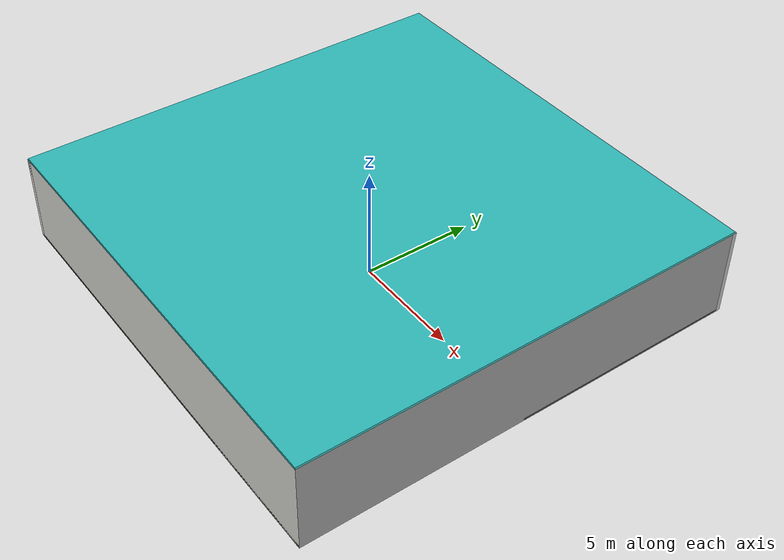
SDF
<sdf version="1.4">
 <world name="default">
  <physics type="ode">
   <max_step_size>0.001</max_step_size>
   <real_time_factor>1</real_time_factor>
   <real_time_update_rate>1000</real_time_update_rate>
   <gravity>0 0 -9.8</gravity>
  </physics>
  <scene><ambient>0.4 0.4 0.4 1</ambient><background>0.7 0.7 0.7 1</background><shadows>1</shadows></scene>
  <model name="Surrounding">
   <static>1</static>
   <link name="Ceiling">
    <collision name="Ceiling_Collision"><geometry><box><size>20 20 0.1</size></box></geometry></collision>
    <visual name="Ceiling_Visual">
     <geometry><box><size>20 20 0.1</size></box></geometry>
     <material>
      <script>
       <uri>file://media/materials/scripts/gazebo.material</uri>
       <name>Gazebo/TurquoiseGlowOutline</name>
      </script>
     </material>
    </visual>
    <pose>0 0 4.05 0 0 0</pose>
   </link>
   <link name="Wall_South">
    <collision name="Wall_South_Collision">
     <geometry><box><size>20 0 4</size></box></geometry>
     <pose>0 0 2 0 -0 0</pose>
    </collision>
    <visual name="Wall_South_Visual">
     <pose>0 0 2 0 -0 0</pose>
     <geometry><box><size>20 0 4</size></box></geometry>
     <material>
      <script><uri>file://media/materials/scripts/gazebo.material</uri><name>Gazebo/CeilingTiled</name></script>
     </material>
    </visual>
    <velocity_decay><linear>0</linear><angular>0</angular></velocity_decay>
    <pose>0 -10 0 0 -0 0</pose>
   </link>
   <link name="Wall_East">
    <collision name="Wall_21_Collision">
     <geometry><box><size>20 0 4</size></box></geometry>
     <pose>0 0 2 0 -0 0</pose>
    </collision>
    <visual name="Wall_21_Visual">
     <pose>0 0 2 0 -0 0</pose>
     <geometry><box><size>20 0 4</size></box></geometry>
     <material>
      <script><uri>file://media/materials/scripts/gazebo.material</uri><name>Gazebo/Grey</name></script>
     </material>
    </visual>
    <velocity_decay><linear>0</linear><angular>0</angular></velocity_decay>
    <pose>10 0 0 0 -0 1.5708</pose>
   </link>
   <link name="Wall_North">
    <collision name="Wall_22_Collision">
     <geometry><box><size>20 0.2 4</size></box></geometry>
     <pose>0 0 2 0 -0 0</pose>
    </collision>
    <visual name="Wall_22_Visual">
     <pose>0 0 2 0 -0 0</pose>
     <geometry><box><size>20 0.2 4</size></box></geometry>
     <material>
      <script><uri>file://media/materials/scripts/gazebo.material</uri><name>Gazebo/LightOff</name></script>
     </material>
    </visual>
    <velocity_decay><linear>0</linear><angular>0</angular></velocity_decay>
    <pose>0 10 0 0 -0 0</pose>
   </link>
   <link name="Wall_West">
    <collision name="Wall_23_Collision">
     <geometry><box><size>20 0.2 4</size></box></geometry>
     <pose>0 0 2 0 -0 0</pose>
    </collision>
    <visual name="Wall_23_Visual">
     <pose>0 0 2 0 -0 0</pose>
     <geometry><box><size>20 0.2 4</size></box></geometry>
     <material>
      <script><uri>file://media/materials/scripts/gazebo.material</uri><name>Gazebo/White</name></script>
     </material>
    </visual>
    <velocity_decay><linear>0</linear><angular>0</angular></velocity_decay>
    <pose>-10 0 0 0 0 -1.5708</pose>
   </link>
   <link name="Ground_link">
    <collision name="collision">
     <pose>0 0 .05 0 -0 0</pose>
     <geometry><box><size>20 20 0.1</size></box></geometry>
    </collision>
    <visual name="visual">
     <pose>0 0 .05 0 -0 0</pose>
     <geometry><box><size>20 20 0.1</size></box></geometry>
     <material>
      <script><uri>file://media/materials/scripts/gazebo.material</uri><name>Gazebo/DarkGrey</name></script>
     </material>
    </visual>
   </link>
   <static>1</static>
  </model>
  <spherical_coordinates>
   <surface_model>EARTH_WGS84</surface_model>
   <latitude_deg>0</latitude_deg>
   <longitude_deg>0</longitude_deg>
   <elevation>0</elevation>
   <heading_deg>0</heading_deg>
  </spherical_coordinates>
  <light name="lightball_0" type="diffuse">
   <diffuse>0.8 0.8 0.8 1</diffuse>
   <specular>0.2 0.2 0.2 1</specular>
   <attenuation>
    <range>100</range>
    <constant>0.7</constant>
    <linear>0.01</linear>
    <quadratic>0.001</quadratic>
   </attenuation>
   <direction>-0.5 0.1 -0.9</direction>
   <pose>-5.05170767382 -1.25612568816 1.49513237352 0 0 0</pose>
  </light>
  <light name="lightball_1" type="diffuse">
   <diffuse>0.8 0.8 0.8 1</diffuse>
   <specular>0.2 0.2 0.2 1</specular>
   <attenuation>
    <range>100</range>
    <constant>0.7</constant>
    <linear>0.01</linear>
    <quadratic>0.001</quadratic>
   </attenuation>
   <direction>-0.5 0.1 -0.9</direction>
   <pose>-6.86843728188 9.54776348351 2.28172548824 0 0 0</pose>
  </light>
  <light name="lightball_2" type="diffuse">
   <diffuse>0.8 0.8 0.8 1</diffuse>
   <specular>0.2 0.2 0.2 1</specular>
   <attenuation>
    <range>100</range>
    <constant>0.7</constant>
    <linear>0.01</linear>
    <quadratic>0.001</quadratic>
   </attenuation>
   <direction>-0.5 0.1 -0.9</direction>
   <pose>4.09568958377 0.0711213341291 1.10370470465 0 0 0</pose>
  </light>
  <light name="lightball_3" type="diffuse">
   <diffuse>0.8 0.8 0.8 1</diffuse>
   <specular>0.2 0.2 0.2 1</specular>
   <attenuation>
    <range>100</range>
    <constant>0.7</constant>
    <linear>0.01</linear>
    <quadratic>0.001</quadratic>
   </attenuation>
   <direction>-0.5 0.1 -0.9</direction>
   <pose>-5.44741130745 -8.49239274371 0.989583747691 0 0 0</pose>
  </light>
  <light name="lightball_4" type="diffuse">
   <diffuse>0.8 0.8 0.8 1</diffuse>
   <specular>0.2 0.2 0.2 1</specular>
   <attenuation>
    <range>100</range>
    <constant>0.7</constant>
    <linear>0.01</linear>
    <quadratic>0.001</quadratic>
   </attenuation>
   <direction>-0.5 0.1 -0.9</direction>
   <pose>9.28366491141 -0.056870216819 1.5888286042 0 0 0</pose>
  </light>
  <light name="lightball_5" type="diffuse">
   <diffuse>0.8 0.8 0.8 1</diffuse>
   <specular>0.2 0.2 0.2 1</specular>
   <attenuation>
    <range>100</range>
    <constant>0.7</constant>
    <linear>0.01</linear>
    <quadratic>0.001</quadratic>
   </attenuation>
   <direction>-0.5 0.1 -0.9</direction>
   <pose>6.88740071274 9.55698631854 3.29611786993 0 0 0</pose>
  </light>
  <include>
   <uri>model://construction_cone</uri>
   <pose>-7.80527147995 3.70956616073 0 0 0 2.94505392396</pose>
  </include>
  <include><uri>model://cabinet</uri><pose>-4.4096823784 -0.838300700702 0 0 0 0.136534530254</pose></include>
  <include>
   <uri>model://construction_cone</uri>
   <pose>-1.2876855054 3.91093792146 0 0 0 2.76165717871</pose>
  </include>
  <include>
   <uri>model://textured_shapes</uri>
   <pose>2.09599270145 -7.28727202011 0 0 0 1.78125670991</pose>
  </include>
  <include>
   <uri>model://robocup_3Dsim_goal</uri>
   <pose>0.814898314544 -1.90071635896 0 0 0 0.998051851293</pose>
  </include>
  <include><uri>model://cabinet</uri><pose>4.0618603001 4.30493088804 0 0 0 1.31334424845</pose></include>
  <include><uri>model://cabinet</uri><pose>8.10417391364 5.2541205883 0 0 0 0.347096717534</pose></include>
 </world>
</sdf>

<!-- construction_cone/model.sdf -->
<sdf version="1.5">
  <model name="Construction Cone">
    <link name="link">
      <collision name="collision">
        <geometry>
          <mesh>
            <scale>10 10 10</scale>
            <uri>file://isr-testbed/construction_cone/meshes/construction_cone.dae</uri>
          </mesh>
        </geometry>
      </collision>
      <visual name="visual">
        <geometry>
          <mesh>
            <scale>10 10 10</scale>
            <uri>file://isr-testbed/construction_cone/meshes/construction_cone.dae</uri>
          </mesh>
        </geometry>
      </visual>
    </link>
  </model>
</sdf>

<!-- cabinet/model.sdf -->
<sdf version="1.5">
  <model name="cabinet">
    <static>true</static>
    <link name="cabinet_bottom_plate">
      <inertial>
        <pose>0 0 -1 0 0 0</pose>
        <inertia>
          <ixx>2.050000</ixx>
          <ixy>0</ixy>
          <ixz>0</ixz>
          <iyy>2.050000</iyy>
          <iyz>0</iyz>
          <izz>2.050000</izz>
        </inertia>
        <mass>25.000000</mass>
      </inertial>
      <collision name="cabinet_bottom_plate_geom">
        <pose>0 0 0.010000 0 0 0</pose>
        <geometry>
          <box>
            <size>0.450000 0.450000 0.020000</size>
          </box>
        </geometry>
      </collision>
      <visual name="cabinet_bottom_plate_geom_visual">
        <pose>0 0 0.010000 0 0 0</pose>
        <geometry>
          <box>
            <size>0.450000 0.450000 0.020000</size>
          </box>
        </geometry>
        <material>
          <script>
            <uri>model://media/materials/scripts/gazebo.material</uri>
            <name>Gazebo/Wood</name>
          </script>
        </material>
      </visual>
      <collision name="cabinet_bottom_plate_geom_cabinet_back_plate">
        <pose>0.235000 0 0.510000 0 0 0</pose>
        <geometry>
          <box>
            <size>0.020000 0.450000 1.020000</size>
          </box>
        </geometry>
      </collision>
      <visual name="cabinet_bottom_plate_geom_cabinet_back_plate_visual">
        <pose>0.235000 0 0.510000 0 0 0</pose>
        <geometry>
          <box>
            <size>0.020000 0.450000 1.020000</size>
          </box>
        </geometry>
        <material>
          <script>
            <uri>model://media/materials/scripts/gazebo.material</uri>
            <name>Gazebo/Wood</name>
          </script>
        </material>
      </visual>
      <collision name="cabinet_bottom_plate_geom_cabinet_left_plate">
        <pose>0 0.235000 0.510000 0 0 0</pose>
        <geometry>
          <box>
            <size>0.450000 0.020000 1.020000</size>
          </box>
        </geometry>
      </collision>
      <visual name="cabinet_bottom_plate_geom_cabinet_left_plate_visual">
        <pose>0 0.235000 0.510000 0 0 0</pose>
        <geometry>
          <box>
            <size>0.450000 0.020000 1.020000</size>
          </box>
        </geometry>
        <material>
          <script>
            <uri>model://media/materials/scripts/gazebo.material</uri>
            <name>Gazebo/Wood</name>
          </script>
        </material>
      </visual>
      <collision name="cabinet_bottom_plate_geom_cabinet_middle_plate">
        <pose>0 0 0.510000 0 0 0</pose>
        <geometry>
          <box>
            <size>0.450000 0.450000 0.020000</size>
          </box>
        </geometry>
      </collision>
      <visual name="cabinet_bottom_plate_geom_cabinet_middle_plate_visual">
        <pose>0 0 0.510000 0 0 0</pose>
        <geometry>
          <box>
            <size>0.450000 0.450000 0.020000</size>
          </box>
        </geometry>
        <material>
          <script>
            <uri>model://media/materials/scripts/gazebo.material</uri>
            <name>Gazebo/Wood</name>
          </script>
        </material>
      </visual>
      <collision name="cabinet_bottom_plate_geom_cabinet_right_plate">
        <pose>0 -0.235000 0.510000 0 0 0</pose>
        <geometry>
          <box>
            <size>0.450000 0.020000 1.020000</size>
          </box>
        </geometry>
      </collision>
      <visual name="cabinet_bottom_plate_geom_cabinet_right_plate_visual">
        <pose>0 -0.235000 0.510000 0 0 0</pose>
        <geometry>
          <box>
            <size>0.450000 0.020000 1.020000</size>
          </box>
        </geometry>
        <material>
          <script>
            <uri>model://media/materials/scripts/gazebo.material</uri>
            <name>Gazebo/Wood</name>
          </script>
        </material>
      </visual>
      <collision name="cabinet_bottom_plate_geom_cabinet_top_plate">
        <pose>0 0 1.010000 0 0 0</pose>
        <geometry>
          <box>
            <size>0.450000 0.450000 0.020000</size>
          </box>
        </geometry>
      </collision>
      <visual name="cabinet_bottom_plate_geom_cabinet_top_plate_visual">
        <pose>0 0 1.010000 0 0 0</pose>
        <geometry>
          <box>
            <size>0.450000 0.450000 0.020000</size>
          </box>
        </geometry>
        <material>
          <script>
            <uri>model://media/materials/scripts/gazebo.material</uri>
            <name>Gazebo/Wood</name>
          </script>
        </material>
      </visual>
    </link>
  </model>
</sdf>

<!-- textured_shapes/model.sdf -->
<sdf version="1.6">
  <model name="textured_shapes">
    <pose>0 0 0.5 0 0 0</pose>
    <link name="box">
      <pose>0 -1.5 0 0 0 0</pose>
      <collision name="collision">
        <geometry>
          <box>
            <size>1 1 1</size>
          </box>
        </geometry>
      </collision>
      <visual name="visual">
        <geometry>
          <box>
            <size>1 1 1</size>
          </box>
        </geometry>
        <material>
          <script>
            <uri>model://../model_source/models/textured_shapes/materials/scripts</uri>
            <uri>model://../model_source/models/textured_shapes/materials/textures</uri>
            <name>TexturedShape/Squares</name>
          </script>
        </material>
      </visual>
    </link>
    <link name="sphere">
      <collision name="collision">
        <geometry>
          <sphere>
            <radius>0.5</radius>
          </sphere>
        </geometry>
      </collision>
      <visual name="visual">
        <geometry>
          <sphere>
            <radius>0.5</radius>
          </sphere>
        </geometry>
        <material>
          <script>
            <uri>model://../model_source/models/textured_shapes/materials/scripts</uri>
            <uri>model://../model_source/models/textured_shapes/materials/textures</uri>
            <name>TexturedShape/Squares</name>
          </script>
        </material>
      </visual>
    </link>
    <link name="cylinder">
      <pose>0 1.5 0 0 0 0</pose>
      <collision name="collision">
        <geometry>
          <cylinder>
            <radius>0.5</radius>
            <length>1</length>
          </cylinder>
        </geometry>
      </collision>
      <visual name="visual">
        <geometry>
          <cylinder>
            <radius>0.5</radius>
            <length>1</length>
          </cylinder>
        </geometry>
        <material>
          <script>
            <uri>model://../model_source/models/textured_shapes/materials/scripts</uri>
            <uri>model://../model_source/models/textured_shapes/materials/textures</uri>
            <name>TexturedShape/Squares</name>
          </script>
        </material>
      </visual>
    </link>
  </model>
</sdf>

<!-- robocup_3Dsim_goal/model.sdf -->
<sdf version="1.5">
  <model name="robocup_3d_goal">
    <static>true</static>
    <link name="left_post">
      <pose>0 1.05 0.45 0 0 0</pose>
      <collision name="collision">
        <geometry>
          <cylinder>
            <radius>0.05</radius>
            <length>0.9</length>
          </cylinder>
        </geometry>
      </collision>
      <visual name="visual">
        <geometry>
          <cylinder>
            <radius>0.05</radius>
            <length>0.9</length>
          </cylinder>
        </geometry>
        <material>
          <script>
            <uri>file://media/materials/scripts/gazebo.material</uri>
            <name>Gazebo/ZincYellow</name>
          </script>
        </material>
      </visual>
    </link>
    <link name="left_support_horiz_lower">
      <pose>0.30 1.05 0.01 0 0 0</pose>
      <collision name="collision">
        <geometry>
          <box>
            <size>0.50 0.02 0.02</size>
          </box>
        </geometry>
      </collision>
      <visual name="visual">
        <geometry>
          <box>
            <size>0.50 0.02 0.02</size>
          </box>
        </geometry>
        <material>
          <script>
            <uri>file://media/materials/scripts/gazebo.material</uri>
            <name>Gazebo/White</name>
          </script>
        </material>
      </visual>
    </link>
    <link name="left_support_horiz_upper">
      <pose>0.30 1.05 0.79 0 0 0</pose>
      <collision name="collision">
        <geometry>
          <box>
            <size>0.50 0.02 0.02</size>
          </box>
        </geometry>
      </collision>
      <visual name="visual">
        <geometry>
          <box>
            <size>0.50 0.02 0.02</size>
          </box>
        </geometry>
        <material>
          <script>
            <uri>file://media/materials/scripts/gazebo.material</uri>
            <name>Gazebo/White</name>
          </script>
        </material>
      </visual>
    </link>
    <link name="left_support_vertical">
      <pose>0.56 1.05 0.4 0 1.5708 0</pose>
      <collision name="collision">
        <geometry>
          <box>
            <size>0.80 0.02 0.02</size>
          </box>
        </geometry>
      </collision>
      <visual name="visual">
        <geometry>
          <box>
            <size>0.80 0.02 0.02</size>
          </box>
        </geometry>
        <material>
          <script>
            <uri>file://media/materials/scripts/gazebo.material</uri>
            <name>Gazebo/White</name>
          </script>
        </material>
      </visual>
    </link>
    <link name="right_support_horiz_lower">
      <pose>0.30 -1.05 0.01 0 0 0</pose>
      <collision name="collision">
        <geometry>
          <box>
            <size>0.50 0.02 0.02</size>
          </box>
        </geometry>
      </collision>
      <visual name="visual">
        <geometry>
          <box>
            <size>0.50 0.02 0.02</size>
          </box>
        </geometry>
        <material>
          <script>
            <uri>file://media/materials/scripts/gazebo.material</uri>
            <name>Gazebo/White</name>
          </script>
        </material>
      </visual>
    </link>
    <link name="right_support_horiz_upper">
      <pose>0.30 -1.05 0.79 0 0 0</pose>
      <collision name="collision">
        <geometry>
          <box>
            <size>0.50 0.02 0.02</size>
          </box>
        </geometry>
      </collision>
      <visual name="visual">
        <geometry>
          <box>
            <size>0.50 0.02 0.02</size>
          </box>
        </geometry>
        <material>
          <script>
            <uri>file://media/materials/scripts/gazebo.material</uri>
            <name>Gazebo/White</name>
          </script>
        </material>
      </visual>
    </link>
    <link name="right_support_vertical">
      <pose>0.56 -1.05 0.4 0 1.5708 0</pose>
      <collision name="collision">
        <geometry>
          <box>
            <size>0.80 0.02 0.02</size>
          </box>
        </geometry>
      </collision>
      <visual name="visual">
        <geometry>
          <box>
            <size>0.80 0.02 0.02</size>
          </box>
        </geometry>
        <material>
          <script>
            <uri>file://media/materials/scripts/gazebo.material</uri>
            <name>Gazebo/White</name>
          </script>
        </material>
      </visual>
    </link>
    <link name="center_support_horiz_lower">
      <pose>0.56 0 0.01 0 1.5708 0</pose>
      <collision name="collision">
        <geometry>
          <box>
            <size>0.02 2.08 0.02</size>
          </box>
        </geometry>
      </collision>
      <visual name="visual">
        <geometry>
          <box>
            <size>0.02 2.08 0.02</size>
          </box>
        </geometry>
        <material>
          <script>
            <uri>file://media/materials/scripts/gazebo.material</uri>
            <name>Gazebo/White</name>
          </script>
        </material>
      </visual>
    </link>
    <link name="center_support_horiz_upper">
      <pose>0.56 0 0.79 0 1.5708 0</pose>
      <collision name="collision">
        <geometry>
          <box>
            <size>0.02 2.08 0.02</size>
          </box>
        </geometry>
      </collision>
      <visual name="visual">
        <geometry>
          <box>
            <size>0.02 2.08 0.02</size>
          </box>
        </geometry>
        <material>
          <script>
            <uri>file://media/materials/scripts/gazebo.material</uri>
            <name>Gazebo/White</name>
          </script>
        </material>
      </visual>
    </link>
    <link name="right_post">
      <pose>0 -1.05 0.45 0 0 0</pose>
      <collision name="collision">
        <geometry>
          <cylinder>
            <radius>0.05</radius>
            <length>0.9</length>
          </cylinder>
        </geometry>
      </collision>
      <visual name="visual">
        <geometry>
          <cylinder>
            <radius>0.05</radius>
            <length>0.9</length>
          </cylinder>
        </geometry>
        <material>
          <script>
            <uri>file://media/materials/scripts/gazebo.material</uri>
            <name>Gazebo/ZincYellow</name>
          </script>
        </material>
      </visual>
    </link>
    <link name="crossbar">
      <pose>0 0 0.85 1.57 1.57 0</pose>
      <collision name="collision">
        <geometry>
          <cylinder>
            <radius>0.05</radius>
            <length>2.0</length>
          </cylinder>
        </geometry>
      </collision>
      <visual name="visual">
        <geometry>
          <cylinder>
            <radius>0.05</radius>
            <length>2.0</length>
          </cylinder>
        </geometry>
        <material>
          <script>
            <uri>file://media/materials/scripts/gazebo.material</uri>
            <name>Gazebo/ZincYellow</name>
          </script>
        </material>
      </visual>
    </link>
    <link name="center_net">
      <pose>0.56 0 0.40 0 0 0</pose>
      <collision name="collision">
        <geometry>
          <box>
            <size>0.01 2.1 0.80</size>
          </box>
        </geometry>
      </collision>
      <visual name="visual">
        <geometry>
          <box>
            <size>0.01 2.1 0.80</size>
          </box>
        </geometry>
        <material>
          <script>
            <uri>model://../model_source/models/robocup09_spl_field/materials/scripts/</uri>
            <uri>model://../model_source/models/robocup09_spl_field/materials/textures/</uri>
            <name>RoboCup/Net</name>
          </script>
        </material>
      </visual>
    </link>
    <link name="left_net">
      <pose>0.30 1.05 0.40 0 0 0</pose>
      <collision name="collision">
        <geometry>
          <box>
            <size>0.50 0.01 0.76</size>
          </box>
        </geometry>
      </collision>
      <visual name="visual">
        <geometry>
          <box>
            <size>0.50 0.01 0.76</size>
          </box>
        </geometry>
        <material>
          <script>
            <uri>model://../model_source/models/robocup09_spl_field/materials/scripts/</uri>
            <uri>model://../model_source/models/robocup09_spl_field/materials/textures/</uri>
            <name>RoboCup/Net</name>
          </script>
        </material>
      </visual>
    </link>
    <link name="right_net">
      <pose>0.30 -1.05 0.40 0 0 0</pose>
      <collision name="collision">
        <geometry>
          <box>
            <size>0.50 0.01 0.76</size>
          </box>
        </geometry>
      </collision>
      <visual name="visual">
        <geometry>
          <box>
            <size>0.50 0.01 0.76</size>
          </box>
        </geometry>
        <material>
          <script>
            <uri>model://../model_source/models/robocup09_spl_field/materials/scripts/</uri>
            <uri>model://../model_source/models/robocup09_spl_field/materials/textures/</uri>
            <name>RoboCup/Net</name>
          </script>
        </material>
      </visual>
    </link>
  </model>
</sdf>
